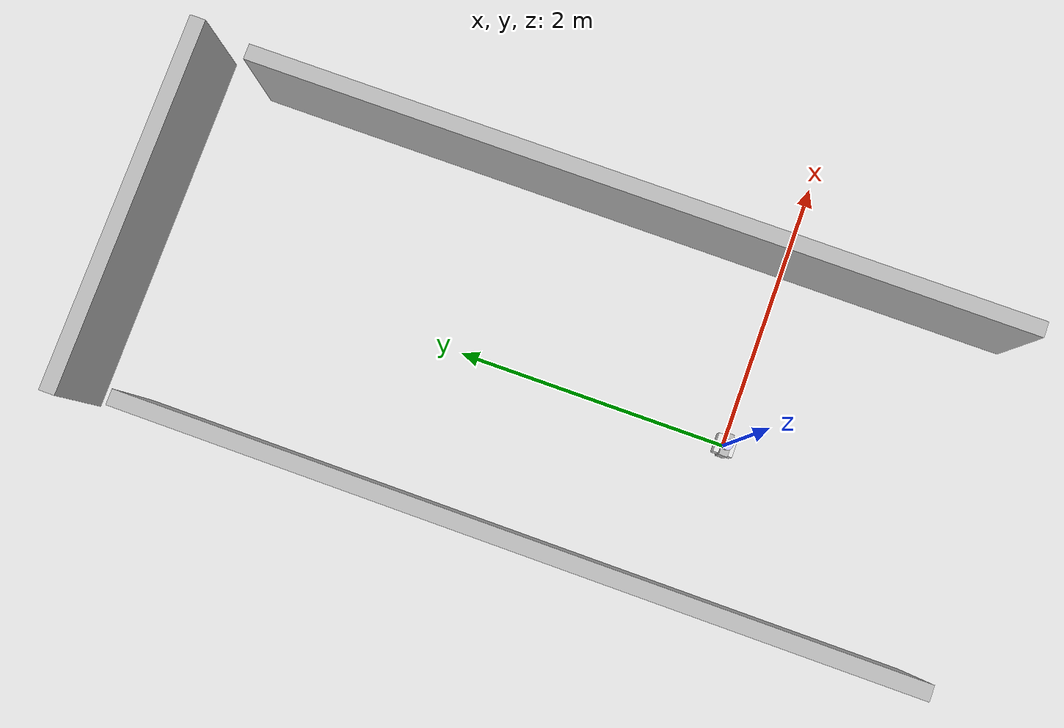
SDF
<sdf version="1.6">
 <world name="default">
  <include><uri>model://sun</uri></include>
  <plugin name="stepping_plugin" filename="libstepping_plugin.so"/>
  <physics name="ode" type="ode">
   <ode><constraints><contact_max_correcting_vel>0</contact_max_correcting_vel></constraints></ode>
   <max_step_size>0.002</max_step_size>
   <real_time_update_rate>0</real_time_update_rate>
  </physics>
  <model name="planning_scene">
   <plugin name="gazebo_ros_moveit_planning_scene" filename="libgazebo_ros_moveit_planning_scene.so">
    <topicName>gazebo/planning_scene</topicName>
    <robotName>hdt_michigan</robotName>
    <frameId>val_root</frameId>
    <updatePeriod>0.1</updatePeriod>
    <scalePrimitivesFactor>1.1</scalePrimitivesFactor>
   </plugin>
  </model>
  <plugin name="gazebo_ros_tf_plugin" filename="libgazebo_ros_tf_plugin.so"/>
  <plugin name="collision_map_plugin" filename="libcollision_map_plugin.so"/>
  <include><uri>model://cubes</uri></include>
  <include><uri>model://bottle</uri></include>
  <include><uri>model://can</uri></include>
  <include><uri>model://cheezits</uri></include>
  <model name="safety walls">
   <pose>0 4 0 0 0 -1.5707</pose>
   <static>true</static>
   <link name="1212_west_monitors">
    <pose>2.85 -1.1 1.5 0 0 0</pose>
    <collision name="collision"><geometry><box><size>5 0.1 0.8</size></box></geometry></collision>
    <visual name="visual"><geometry><box><size>5 0.1 0.8</size></box></geometry></visual>
   </link>
   <link name="1212_east_monitors">
    <pose>2.85 1.1 1.5 0 0 0</pose>
    <collision name="collision"><geometry><box><size>5 0.1 0.8</size></box></geometry></collision>
    <visual name="visual"><geometry><box><size>5 0.1 0.8</size></box></geometry></visual>
   </link>
   <link name="behind_victor">
    <pose>0.0 0 1.5 0 0 0</pose>
    <collision name="collision"><geometry><box><size>0.1 2.4 0.8</size></box></geometry></collision>
    <visual name="visual"><geometry><box><size>0.1 2.4 0.8</size></box></geometry></visual>
   </link>
  </model>
 </world>
</sdf>

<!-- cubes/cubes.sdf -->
<sdf version="1.6">
    <model name="cubes">
        <allow_auto_disable>true</allow_auto_disable>
        <link name="link">
            <kinematic>true</kinematic>
            <pose>0 0 0.08 0 0 0 0</pose>
            <inertial>
                <pose>0 0 -0.08 0 0 0 0</pose>
                <inertia>
                    <ixx>0.03541666666666667</ixx>
                    <ixy>0</ixy>
                    <ixz>0</ixz>
                    <iyy>0.04166666666666667</iyy>
                    <iyz>0</iyz>
                    <izz>0.010416666666666668</izz>
                </inertia>
                <mass>10.0</mass>
            </inertial>
            <visual name="visual">
                <geometry>
                    <box>
                        <size>0.14 0.14 0.16</size>
                    </box>
                </geometry>
                <material>
                <ambient>0.9 0.9 0.9 1.0</ambient>
                <diffuse>0.9 0.9 0.9 1.0</diffuse>
                </material>
            </visual>
            <collision name="collision">
                <geometry>
                    <box>
                        <size>0.14 0.14 0.16</size>
                    </box>
                </geometry>
                <surface>
                    <friction>
                        <ode>
                            <mu>1.0</mu>
                            <mu2>1.0</mu2>
                        </ode>
                    </friction>
                    <contact>
                        <ode>
                            <kp>1e15</kp>
                            <kd>1e12</kd>
                        </ode>
                    </contact>
                </surface>
            </collision>
        </link>
    </model>
</sdf>

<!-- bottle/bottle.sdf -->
<sdf version="1.6">
    <model name="bottle">
        <allow_auto_disable>true</allow_auto_disable>
        <link name="link">
            <kinematic>true</kinematic>
            <pose>0 0 0.13 0 0 0 0</pose>
            <visual name="visual">
                <geometry>
                    <cylinder>
                        <radius>0.04</radius>
                        <length>0.26</length>
                    </cylinder>
                </geometry>
                <material>
                <ambient>0.8 0.8 1.0 1.0</ambient>
                <diffuse>0.8 0.8 1.0 1.0</diffuse>
                </material>
            </visual>
            <collision name="collision">
                <geometry>
                    <cylinder>
                        <radius>0.04</radius>
                        <length>0.26</length>
                    </cylinder>
                </geometry>
                <surface>
                    <friction>
                        <ode>
                            <mu>1.0</mu>
                            <mu2>1.0</mu2>
                        </ode>
                    </friction>
                    <contact>
                        <ode>
                            <kp>1e15</kp>
                            <kd>1e12</kd>
                        </ode>
                    </contact>
                </surface>
            </collision>
        </link>
    </model>
</sdf>

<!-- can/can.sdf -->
<sdf version="1.6">
    <model name="can">
        <allow_auto_disable>true</allow_auto_disable>
        <link name="link">
            <pose>0 0 0.07 0 0 0 0</pose>
            <inertial>
                <pose>0 0 -0.02 0 0 0 0</pose>
                <mass>2</mass>
                <inertia>
                    <ixx>0.00169375</ixx>
                    <iyy>0.00169375</iyy>
                    <izz>0.00093750</izz>
                </inertia>
            </inertial>
            <visual name="visual">
                <geometry>
                    <cylinder>
                        <radius>0.05</radius>
                        <length>0.14</length>
                    </cylinder>
                </geometry>
                <material>
                    <ambient>0.2 0.2 0.6 1.0</ambient>
                    <diffuse>0.2 0.2 0.6 1.0</diffuse>
                </material>
            </visual>
            <collision name="collision">
                <geometry>
                    <cylinder>
                        <radius>0.05</radius>
                        <length>0.14</length>
                    </cylinder>
                </geometry>
                <surface>
                    <friction>
                        <ode>
                            <mu>1.0</mu>
                            <mu2>1.0</mu2>
                        </ode>
                    </friction>
                    <contact>
                        <ode>
                            <kp>1e15</kp>
                            <kd>1e12</kd>
                        </ode>
                    </contact>
                </surface>
            </collision>
        </link>
    </model>
</sdf>

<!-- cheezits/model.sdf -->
<sdf version="1.4">
  <model name="cheezits">
    <link name="link_1">
      <pose>0 0 0.10795 0 0 0</pose>
      <gravity>true</gravity>
      <inertial>
        <pose>0 0 0 0 0 0</pose>
        <inertia>
          <ixx>0.42204216666666666</ixx>
          <ixy>0</ixy>
          <ixz>0</ixz>
          <iyy>0.6155901666666667</iyy>
          <iyz>0</iyz>
          <izz>0.2607521666666666</izz>
        </inertia>
        <mass>100</mass>
      </inertial>
      <visual name="visual">
        <cast_shadows>0</cast_shadows>
        <geometry>
          <box>
            <size>0.1651 0.0635 0.2159</size>
          </box>
        </geometry>
      </visual>
      <collision name="box_collision">
        <geometry>
          <box>
            <size>0.1651 0.0635 0.2159</size>
          </box>
        </geometry>
        <surface>
          <friction>
            <ode>
              <mu>0.1</mu>
              <mu2>0.1</mu2>
            </ode>
          </friction>
        </surface>
      </collision>
    </link>
    <static>true</static>
  </model>
</sdf>
